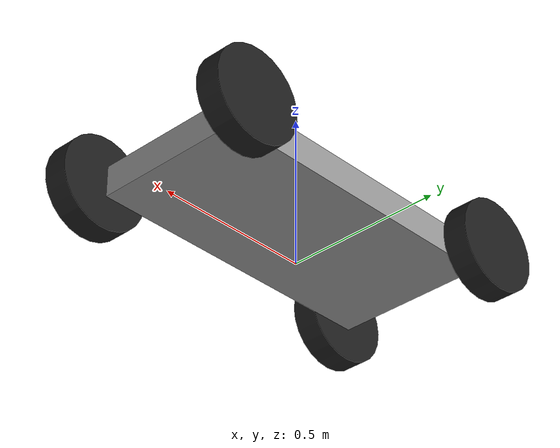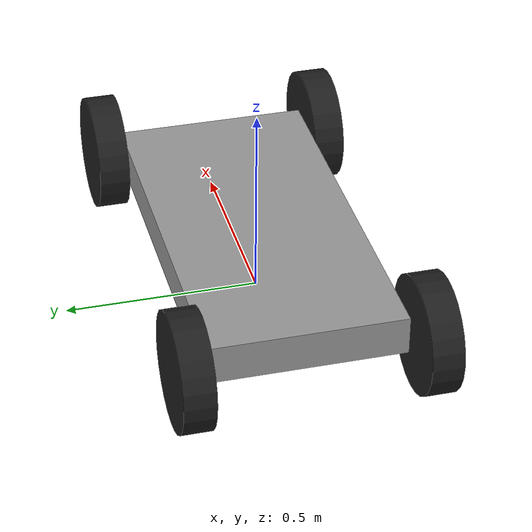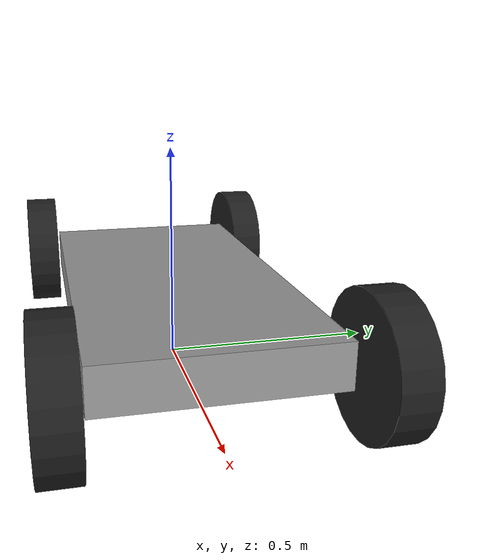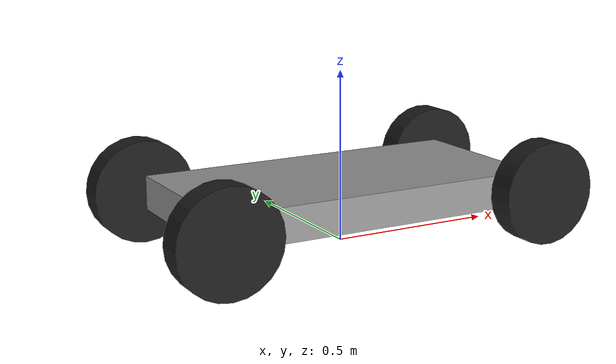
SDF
<?xml version='1.0'?>
<sdf version='1.6'>
  <model name='car'>
    <link name='chassis'>
      <pose frame=''>0 -0 0.15 0 -0 0</pose>
      <inertial>
        <pose frame=''>0.1 0 0 0 -0 0</pose>
        <mass>10</mass>
        <inertia>
          <ixx>0.216667</ixx>
          <iyy>0.841667</iyy>
          <izz>1.04167</izz>
          <ixy>0</ixy>
          <ixz>0</ixz>
          <iyz>0</iyz>
        </inertia>
      </inertial>
      <self_collide>0</self_collide>
      <enable_wind>0</enable_wind>
      <kinematic>0</kinematic>
      <visual name='visual'>
        <geometry>
          <box>
            <size>1 0.5 0.1</size>
          </box>
        </geometry>
        <material>
          <script>
            <uri>file://media/materials/scripts/gazebo.material</uri>
            <name>Gazebo/Grey</name>
          </script>
          <shader type='pixel'/>
        </material>
        <pose frame=''>0 0 0 0 -0 0</pose>
        <transparency>0</transparency>
        <cast_shadows>1</cast_shadows>
      </visual>
      <collision name='collision'>
        <laser_retro>0</laser_retro>
        <max_contacts>10</max_contacts>
        <pose frame=''>0 0 0 0 -0 0</pose>
        <geometry>
          <box>
            <size>1 0.5 0.1</size>
          </box>
        </geometry>
        <surface>
          <friction>
            <ode>
              <mu>1</mu>
              <mu2>1</mu2>
              <fdir1>0 0 0</fdir1>
              <slip1>0</slip1>
              <slip2>0</slip2>
            </ode>
            <torsional>
              <coefficient>1</coefficient>
              <patch_radius>0</patch_radius>
              <surface_radius>0</surface_radius>
              <use_patch_radius>1</use_patch_radius>
              <ode>
                <slip>0</slip>
              </ode>
            </torsional>
          </friction>
          <bounce>
            <restitution_coefficient>0</restitution_coefficient>
            <threshold>1e+06</threshold>
          </bounce>
          <contact>
            <collide_without_contact>0</collide_without_contact>
            <collide_without_contact_bitmask>1</collide_without_contact_bitmask>
            <collide_bitmask>1</collide_bitmask>
            <ode>
              <soft_cfm>0</soft_cfm>
              <soft_erp>0.2</soft_erp>
              <kp>1e+13</kp>
              <kd>1</kd>
              <max_vel>0.01</max_vel>
              <min_depth>0</min_depth>
            </ode>
            <bullet>
              <split_impulse>1</split_impulse>
              <split_impulse_penetration_threshold>-0.01</split_impulse_penetration_threshold>
              <soft_cfm>0</soft_cfm>
              <soft_erp>0.2</soft_erp>
              <kp>1e+13</kp>
              <kd>1</kd>
            </bullet>
          </contact>
        </surface>
      </collision>
    </link>
    <link name='wheel_front_left'>
      <pose frame=''>0.5 0.298 0.15 -1.5708 -0.087266 0</pose>
      <inertial>
        <mass>0.5</mass>
        <inertia>
          <ixx>0.00307917</ixx>
          <iyy>0.00307917</iyy>
          <izz>0.005625</izz>
          <ixy>0</ixy>
          <ixz>0</ixz>
          <iyz>0</iyz>
        </inertia>
        <pose frame=''>0 0 0 0 -0 0</pose>
      </inertial>
      <self_collide>0</self_collide>
      <enable_wind>0</enable_wind>
      <kinematic>0</kinematic>
      <visual name='visual'>
        <geometry>
          <cylinder>
            <radius>0.15</radius>
            <length>0.08</length>
          </cylinder>
        </geometry>
        <material>
          <script>
            <uri>file://media/materials/scripts/gazebo.material</uri>
            <name>Gazebo/Black</name>
          </script>
          <shader type='pixel'/>
        </material>
        <pose frame=''>0 0 0 0 -0 0</pose>
        <transparency>0</transparency>
        <cast_shadows>1</cast_shadows>
      </visual>
      <collision name='collision'>
        <laser_retro>0</laser_retro>
        <max_contacts>10</max_contacts>
        <pose frame=''>0 0 0 0 -0 0</pose>
        <geometry>
          <cylinder>
            <radius>0.15</radius>
            <length>0.08</length>
          </cylinder>
        </geometry>
        <surface>
          <friction>
            <ode>
              <mu>1</mu>
              <mu2>1</mu2>
              <fdir1>0 0 0</fdir1>
              <slip1>0</slip1>
              <slip2>0</slip2>
            </ode>
            <torsional>
              <coefficient>1</coefficient>
              <patch_radius>0</patch_radius>
              <surface_radius>0</surface_radius>
              <use_patch_radius>1</use_patch_radius>
              <ode>
                <slip>0</slip>
              </ode>
            </torsional>
          </friction>
          <bounce>
            <restitution_coefficient>0</restitution_coefficient>
            <threshold>1e+06</threshold>
          </bounce>
          <contact>
            <collide_without_contact>0</collide_without_contact>
            <collide_without_contact_bitmask>1</collide_without_contact_bitmask>
            <collide_bitmask>1</collide_bitmask>
            <ode>
              <soft_cfm>0</soft_cfm>
              <soft_erp>0.2</soft_erp>
              <kp>1e+13</kp>
              <kd>1</kd>
              <max_vel>0.01</max_vel>
              <min_depth>0</min_depth>
            </ode>
            <bullet>
              <split_impulse>1</split_impulse>
              <split_impulse_penetration_threshold>-0.01</split_impulse_penetration_threshold>
              <soft_cfm>0</soft_cfm>
              <soft_erp>0.2</soft_erp>
              <kp>1e+13</kp>
              <kd>1</kd>
            </bullet>
          </contact>
        </surface>
      </collision>
    </link>
    <link name='wheel_front_right'>
      <pose frame=''>0.5 -0.298 0.15 -1.5708 -0.087266 0</pose>
      <inertial>
        <mass>0.5</mass>
        <inertia>
          <ixx>0.00307917</ixx>
          <iyy>0.00307917</iyy>
          <izz>0.005625</izz>
          <ixy>0</ixy>
          <ixz>0</ixz>
          <iyz>0</iyz>
        </inertia>
        <pose frame=''>0 0 0 0 -0 0</pose>
      </inertial>
      <self_collide>0</self_collide>
      <enable_wind>0</enable_wind>
      <kinematic>0</kinematic>
      <visual name='visual'>
        <geometry>
          <cylinder>
            <radius>0.15</radius>
            <length>0.08</length>
          </cylinder>
        </geometry>
        <material>
          <script>
            <uri>file://media/materials/scripts/gazebo.material</uri>
            <name>Gazebo/Black</name>
          </script>
          <shader type='pixel'/>
        </material>
        <pose frame=''>0 0 0 0 -0 0</pose>
        <transparency>0</transparency>
        <cast_shadows>1</cast_shadows>
      </visual>
      <collision name='collision'>
        <laser_retro>0</laser_retro>
        <max_contacts>10</max_contacts>
        <pose frame=''>0 0 0 0 -0 0</pose>
        <geometry>
          <cylinder>
            <radius>0.15</radius>
            <length>0.08</length>
          </cylinder>
        </geometry>
        <surface>
          <friction>
            <ode>
              <mu>1</mu>
              <mu2>1</mu2>
              <fdir1>0 0 0</fdir1>
              <slip1>0</slip1>
              <slip2>0</slip2>
            </ode>
            <torsional>
              <coefficient>1</coefficient>
              <patch_radius>0</patch_radius>
              <surface_radius>0</surface_radius>
              <use_patch_radius>1</use_patch_radius>
              <ode>
                <slip>0</slip>
              </ode>
            </torsional>
          </friction>
          <bounce>
            <restitution_coefficient>0</restitution_coefficient>
            <threshold>1e+06</threshold>
          </bounce>
          <contact>
            <collide_without_contact>0</collide_without_contact>
            <collide_without_contact_bitmask>1</collide_without_contact_bitmask>
            <collide_bitmask>1</collide_bitmask>
            <ode>
              <soft_cfm>0</soft_cfm>
              <soft_erp>0.2</soft_erp>
              <kp>1e+13</kp>
              <kd>1</kd>
              <max_vel>0.01</max_vel>
              <min_depth>0</min_depth>
            </ode>
            <bullet>
              <split_impulse>1</split_impulse>
              <split_impulse_penetration_threshold>-0.01</split_impulse_penetration_threshold>
              <soft_cfm>0</soft_cfm>
              <soft_erp>0.2</soft_erp>
              <kp>1e+13</kp>
              <kd>1</kd>
            </bullet>
          </contact>
        </surface>
      </collision>
    </link>
    <link name='wheel_rear_left'>
      <pose frame=''>-0.5 0.298 0.15 -1.5708 -0 0</pose>
      <inertial>
        <mass>0.5</mass>
        <inertia>
          <ixx>0.00307917</ixx>
          <iyy>0.00307917</iyy>
          <izz>0.005625</izz>
          <ixy>0</ixy>
          <ixz>0</ixz>
          <iyz>0</iyz>
        </inertia>
        <pose frame=''>0 0 0 0 -0 0</pose>
      </inertial>
      <self_collide>0</self_collide>
      <enable_wind>0</enable_wind>
      <kinematic>0</kinematic>
      <visual name='visual'>
        <geometry>
          <cylinder>
            <radius>0.15</radius>
            <length>0.08</length>
          </cylinder>
        </geometry>
        <material>
          <script>
            <uri>file://media/materials/scripts/gazebo.material</uri>
            <name>Gazebo/Black</name>
          </script>
          <shader type='pixel'/>
        </material>
        <pose frame=''>0 0 0 0 -0 0</pose>
        <transparency>0</transparency>
        <cast_shadows>1</cast_shadows>
      </visual>
      <collision name='collision'>
        <laser_retro>0</laser_retro>
        <max_contacts>10</max_contacts>
        <pose frame=''>0 0 0 0 -0 0</pose>
        <geometry>
          <cylinder>
            <radius>0.15</radius>
            <length>0.08</length>
          </cylinder>
        </geometry>
        <surface>
          <friction>
            <ode>
              <mu>1</mu>
              <mu2>1</mu2>
              <fdir1>0 0 0</fdir1>
              <slip1>0</slip1>
              <slip2>0</slip2>
            </ode>
            <torsional>
              <coefficient>1</coefficient>
              <patch_radius>0</patch_radius>
              <surface_radius>0</surface_radius>
              <use_patch_radius>1</use_patch_radius>
              <ode>
                <slip>0</slip>
              </ode>
            </torsional>
          </friction>
          <bounce>
            <restitution_coefficient>0</restitution_coefficient>
            <threshold>1e+06</threshold>
          </bounce>
          <contact>
            <collide_without_contact>0</collide_without_contact>
            <collide_without_contact_bitmask>1</collide_without_contact_bitmask>
            <collide_bitmask>1</collide_bitmask>
            <ode>
              <soft_cfm>0</soft_cfm>
              <soft_erp>0.2</soft_erp>
              <kp>1e+13</kp>
              <kd>1</kd>
              <max_vel>0.01</max_vel>
              <min_depth>0</min_depth>
            </ode>
            <bullet>
              <split_impulse>1</split_impulse>
              <split_impulse_penetration_threshold>-0.01</split_impulse_penetration_threshold>
              <soft_cfm>0</soft_cfm>
              <soft_erp>0.2</soft_erp>
              <kp>1e+13</kp>
              <kd>1</kd>
            </bullet>
          </contact>
        </surface>
      </collision>
    </link>
    <link name='wheel_rear_right'>
      <pose frame=''>-0.5 -0.298 0.15 -1.5708 -0 0</pose>
      <inertial>
        <mass>0.5</mass>
        <inertia>
          <ixx>0.00307917</ixx>
          <iyy>0.00307917</iyy>
          <izz>0.005625</izz>
          <ixy>0</ixy>
          <ixz>0</ixz>
          <iyz>0</iyz>
        </inertia>
        <pose frame=''>0 0 0 0 -0 0</pose>
      </inertial>
      <self_collide>0</self_collide>
      <enable_wind>0</enable_wind>
      <kinematic>0</kinematic>
      <visual name='visual'>
        <geometry>
          <cylinder>
            <radius>0.15</radius>
            <length>0.08</length>
          </cylinder>
        </geometry>
        <material>
          <script>
            <uri>file://media/materials/scripts/gazebo.material</uri>
            <name>Gazebo/Black</name>
          </script>
          <shader type='pixel'/>
        </material>
        <pose frame=''>0 0 0 0 -0 0</pose>
        <transparency>0</transparency>
        <cast_shadows>1</cast_shadows>
      </visual>
      <collision name='collision'>
        <laser_retro>0</laser_retro>
        <max_contacts>10</max_contacts>
        <pose frame=''>0 0 0 0 -0 0</pose>
        <geometry>
          <cylinder>
            <radius>0.15</radius>
            <length>0.08</length>
          </cylinder>
        </geometry>
        <surface>
          <friction>
            <ode>
              <mu>1</mu>
              <mu2>1</mu2>
              <fdir1>0 0 0</fdir1>
              <slip1>0</slip1>
              <slip2>0</slip2>
            </ode>
            <torsional>
              <coefficient>1</coefficient>
              <patch_radius>0</patch_radius>
              <surface_radius>0</surface_radius>
              <use_patch_radius>1</use_patch_radius>
              <ode>
                <slip>0</slip>
              </ode>
            </torsional>
          </friction>
          <bounce>
            <restitution_coefficient>0</restitution_coefficient>
            <threshold>1e+06</threshold>
          </bounce>
          <contact>
            <collide_without_contact>0</collide_without_contact>
            <collide_without_contact_bitmask>1</collide_without_contact_bitmask>
            <collide_bitmask>1</collide_bitmask>
            <ode>
              <soft_cfm>0</soft_cfm>
              <soft_erp>0.2</soft_erp>
              <kp>1e+13</kp>
              <kd>1</kd>
              <max_vel>0.01</max_vel>
              <min_depth>0</min_depth>
            </ode>
            <bullet>
              <split_impulse>1</split_impulse>
              <split_impulse_penetration_threshold>-0.01</split_impulse_penetration_threshold>
              <soft_cfm>0</soft_cfm>
              <soft_erp>0.2</soft_erp>
              <kp>1e+13</kp>
              <kd>1</kd>
            </bullet>
          </contact>
        </surface>
      </collision>
    </link>
    <joint name='wheel_front_left_steer_spin' type='universal'>
      <parent>chassis</parent>
      <child>wheel_front_left</child>
      <pose frame=''>0 0 0 0 -0 0</pose>
      <axis>
        <xyz>0 -1 0</xyz>
        <use_parent_model_frame>0</use_parent_model_frame>
        <limit>
          <lower>-0.610865</lower>
          <upper>0.610865</upper>
          <effort>-1</effort>
          <velocity>-1</velocity>
        </limit>
        <dynamics>
          <spring_reference>0</spring_reference>
          <spring_stiffness>0</spring_stiffness>
          <damping>0</damping>
          <friction>0</friction>
        </dynamics>
      </axis>
      <axis2>
        <xyz>0 0 1</xyz>
        <use_parent_model_frame>0</use_parent_model_frame>
        <dynamics>
          <spring_reference>0</spring_reference>
          <spring_stiffness>0</spring_stiffness>
          <damping>0</damping>
          <friction>0</friction>
        </dynamics>
        <limit>
          <lower>-1e+16</lower>
          <upper>1e+16</upper>
          <effort>-1</effort>
          <velocity>-1</velocity>
        </limit>
      </axis2>
      <physics>
        <ode>
          <limit>
            <cfm>0</cfm>
            <erp>0.2</erp>
          </limit>
          <suspension>
            <cfm>0</cfm>
            <erp>0.2</erp>
          </suspension>
        </ode>
      </physics>
    </joint>
    <joint name='wheel_front_right_steer_spin' type='universal'>
      <parent>chassis</parent>
      <child>wheel_front_right</child>
      <pose frame=''>0 0 0 0 -0 0</pose>
      <axis>
        <xyz>0 -1 0</xyz>
        <use_parent_model_frame>0</use_parent_model_frame>
        <limit>
          <lower>-0.610865</lower>
          <upper>0.610865</upper>
          <effort>-1</effort>
          <velocity>-1</velocity>
        </limit>
        <dynamics>
          <spring_reference>0</spring_reference>
          <spring_stiffness>0</spring_stiffness>
          <damping>0</damping>
          <friction>0</friction>
        </dynamics>
      </axis>
      <axis2>
        <xyz>0 0 1</xyz>
        <use_parent_model_frame>0</use_parent_model_frame>
        <dynamics>
          <spring_reference>0</spring_reference>
          <spring_stiffness>0</spring_stiffness>
          <damping>0</damping>
          <friction>0</friction>
        </dynamics>
        <limit>
          <lower>-1e+16</lower>
          <upper>1e+16</upper>
          <effort>-1</effort>
          <velocity>-1</velocity>
        </limit>
      </axis2>
      <physics>
        <ode>
          <limit>
            <cfm>0</cfm>
            <erp>0.2</erp>
          </limit>
          <suspension>
            <cfm>0</cfm>
            <erp>0.2</erp>
          </suspension>
        </ode>
      </physics>
    </joint>
    <joint name='wheel_rear_left_spin' type='revolute'>
      <parent>chassis</parent>
      <child>wheel_rear_left</child>
      <pose frame=''>0 0 0 0 -0 0</pose>
      <axis>
        <xyz>0 0 1</xyz>
        <use_parent_model_frame>0</use_parent_model_frame>
        <limit>
          <lower>-1e+16</lower>
          <upper>1e+16</upper>
          <effort>-1</effort>
          <velocity>-1</velocity>
        </limit>
        <dynamics>
          <spring_reference>0</spring_reference>
          <spring_stiffness>0</spring_stiffness>
          <damping>0</damping>
          <friction>0</friction>
        </dynamics>
      </axis>
      <physics>
        <ode>
          <limit>
            <cfm>0</cfm>
            <erp>0.2</erp>
          </limit>
          <suspension>
            <cfm>0</cfm>
            <erp>0.2</erp>
          </suspension>
        </ode>
      </physics>
    </joint>
    <joint name='wheel_rear_right_spin' type='revolute'>
      <parent>chassis</parent>
      <child>wheel_rear_right</child>
      <pose frame=''>0 0 0 0 -0 0</pose>
      <axis>
        <xyz>0 0 1</xyz>
        <use_parent_model_frame>0</use_parent_model_frame>
        <limit>
          <lower>-1e+16</lower>
          <upper>1e+16</upper>
          <effort>-1</effort>
          <velocity>-1</velocity>
        </limit>
        <dynamics>
          <spring_reference>0</spring_reference>
          <spring_stiffness>0</spring_stiffness>
          <damping>0</damping>
          <friction>0</friction>
        </dynamics>
      </axis>
      <physics>
        <ode>
          <limit>
            <cfm>0</cfm>
            <erp>0.2</erp>
          </limit>
          <suspension>
            <cfm>0</cfm>
            <erp>0.2</erp>
          </suspension>
        </ode>
      </physics>
    </joint>
    <static>1</static>
    <allow_auto_disable>1</allow_auto_disable>
  </model>
</sdf>
